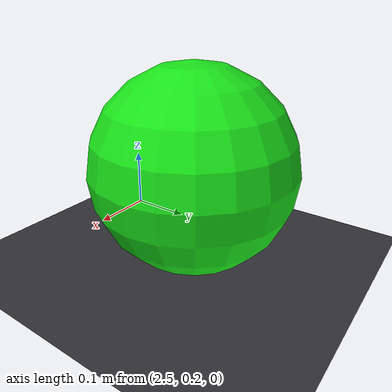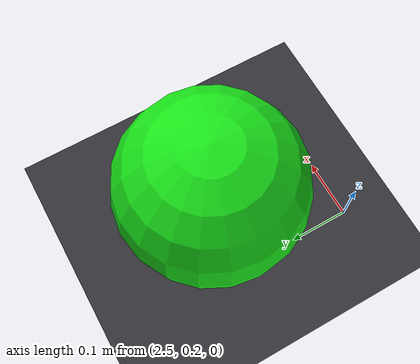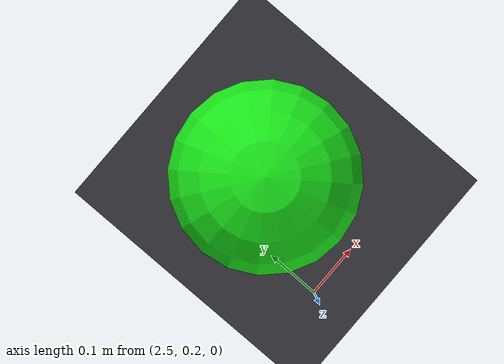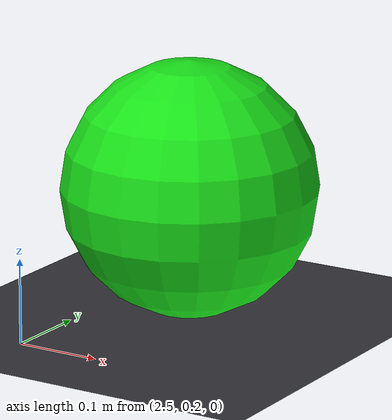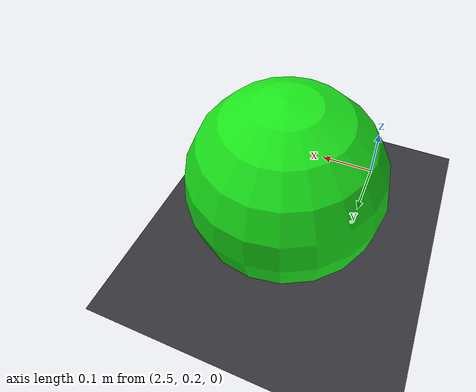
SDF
<?xml version="1.0"?>
<sdf version="1.6">
  <world name="spacemine_arena">

    <include><uri>model://sun</uri></include>

    <!-- dark mining-floor ground -->
    <model name="arena_floor">
      <static>true</static>
      <link name="link">
        <collision name="c"><geometry><plane><normal>0 0 1</normal><size>12 12</size></plane></geometry></collision>
        <visual name="v">
          <geometry><plane><normal>0 0 1</normal><size>12 12</size></plane></geometry>
          <material><ambient>0.15 0.15 0.17 1</ambient><diffuse>0.2 0.2 0.22 1</diffuse></material>
        </visual>
      </link>
    </model>

    <!-- green "ore" ball -->
    <model name="ore_ball">
      <static>true</static>
      <pose>2.6 0.4 0.15 0 0 0</pose>
      <link name="link">
        <collision name="c"><geometry><sphere><radius>0.15</radius></sphere></geometry></collision>
        <visual name="v">
          <geometry><sphere><radius>0.15</radius></sphere></geometry>
          <material><ambient>0.05 0.6 0.05 1</ambient><diffuse>0.1 0.9 0.1 1</diffuse><emissive>0.0 0.2 0.0 1</emissive></material>
        </visual>
      </link>
    </model>

    <!-- "cone" obstacles: spawned by arena_setup.py (see top-of-file note). -->

    <physics type="ode"><max_step_size>0.004</max_step_size><real_time_factor>1.0</real_time_factor></physics>
  </world>
</sdf>
